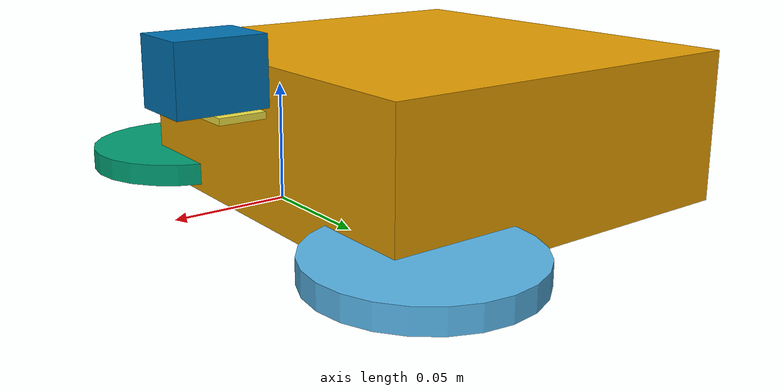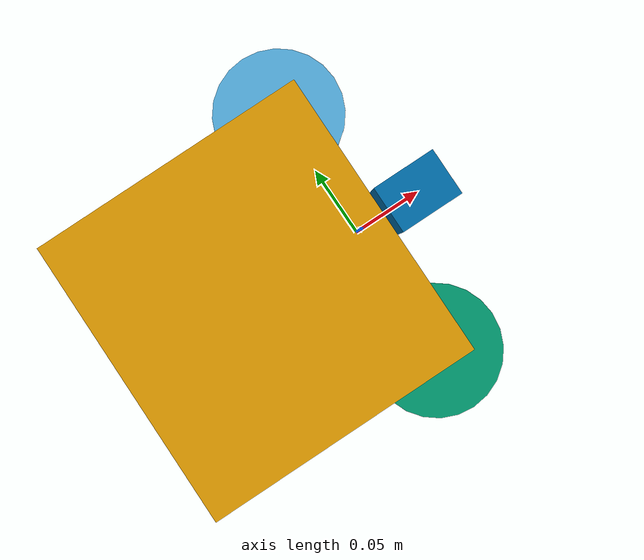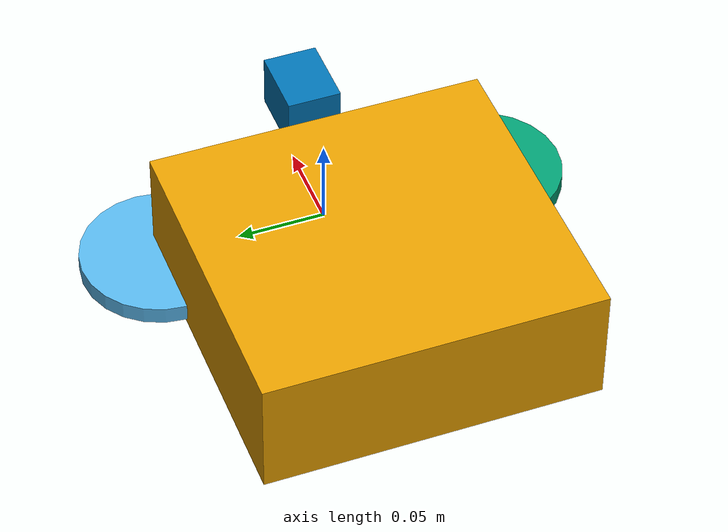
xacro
<?xml version="1.0"?>
<robot name="ccs_robot">
  <link name="base_link">
    <!-- Approximate shape by box. The origin is on the ground between the wheels. The box is 2.6cm above the ground and starts 7.72cm in front of the origin. -->
    <colision>
      <geometry><box size=".18 .19 .069" /></geometry>
      <origin xyz="-.0772 0 .026" rpy="0 0 0" />
    </colision>
    <visual>
      <geometry><box size=".18 .19 .069" /></geometry>
      <origin xyz="-.0772 0 .026" rpy="0 0 0" />
    </visual>
  </link>

  <link name="left_wheel">
    <collision>
      <geometry><cylinder length=".01" radius=".045" /></geometry>
      <origin xyz="0 0 0" rpy="0 0 0" />
    </collision>
    <visual>
      <geometry><cylinder length=".01" radius=".045" /></geometry>
      <origin xyz="0 0 0" rpy="0 0 0" />
    </visual>
  </link>
  <joint type="continuous" name="left_wheel_hinge">
    <parent link="base_link" />
    <child link="left_wheel" />
    <origin xyz="0 .095 0" rpy="0 0 0" />
    <axis xyz="0 1 0" rpy="0 0 0" />
  </joint>
  <transmission name="left_transmission">
    <type>transmission_interface/SimpleTransmission</type>
    <joint name="left_wheel_hinge">
      <hardwareInterface>VelocityJointInterface</hardwareInterface>
    </joint>
    <actuator name="left_motor">
      <hardwareInterface>VelocityJointInterface</hardwareInterface>
      <mechanicalReduction>50</mechanicalReduction> <!-- TODO: Untested  -->
    </actuator>
  </transmission>

  <link name="right_wheel">
    <collision>
      <geometry><cylinder length=".01" radius=".045" /></geometry>
      <origin xyz="0 0 0" rpy="0 0 0" />
    </collision>
    <visual>
      <geometry><cylinder length=".01" radius=".045" /></geometry>
      <origin xyz="0 0 0" rpy="0 0 0" />
    </visual>
  </link>
  <joint type="continuous" name="right_wheel_hinge">
    <parent link="base_link" />
    <child link="right_wheel" />
    <origin xyz="0 -.095 0" rpy="0 0 0" />
    <axis xyz="0 1 0" rpy="0 0 0" />
  </joint>
  <transmission name="right_transmission">
    <type>transmission_interface/SimpleTransmission</type>
    <joint name="right_wheel_hinge">
      <hardwareInterface>VelocityJointInterface</hardwareInterface>
    </joint>
    <actuator name="right_motor">
      <hardwareInterface>VelocityJointInterface</hardwareInterface>
      <mechanicalReduction>50</mechanicalReduction> <!-- TODO: Untested -->
    </actuator>
  </transmission>

  <joint type="fixed" name="camera_base_link_hinge">
    <parent link="base_link" />
    <child link="camera_platform" />
    <origin xyz="0 0 0.04" rpy="0 0 0" />
  </joint>

  <link name="camera_platform">
    <collision>
      <geometry><box size="0.068 0.02 0.003" /></geometry>
      <origin xyz="0.034 0 0" rpy="0 0 0" />
    </collision>
    <visual>
      <geometry><box size="0.068 0.02 0.003"/></geometry>
      <origin xyz="0 0 0" rpy="0 0 0"/>
    </visual>
  </link>
  <joint type="fixed" name="camera_mounting_hinge">
    <parent link="camera_platform" />
    <child link="camera_mounting" />
    <origin xyz="0.034 0 0" rpy="0 0 0" />
  </joint>

  <link name="camera_mounting">
    <collision>
      <geometry><box size="0.04 0.03 0.03"/></geometry>
      <origin xyz="0 0 0.019" rpy="0 0 0" />
    </collision>
    <visual>
      <geometry><box size="0.04 0.03 0.03"/></geometry>
      <origin xyz="0 0 0.019" rpy="0 0 0" />
    </visual>
  </link>

  <sensor name="camera" update_rate="20">
    <parent link="camera_mounting"/>
    <origin xyz="0 0 0" rpy="0 0 0"/>
    <camera>
            <image width="640" height="480" hfov="1.5708" format="RGB8" near="0.01" far="50.0"/> <!-- TODO: Untested-->
    </camera>
  </sensor>

  <link name="led/red">
  </link>
  <joint type="fixed" name="led/red_fastening">
    <parent link="base_link" />
    <child link="led/red" />
    <origin xyz="0 0 0" rpy="0 0 0" />
  </joint>

  <link name="led/blue">
  </link>
  <joint type="fixed" name="led/blue_fastening">
    <parent link="base_link" />
    <child link="led/blue" />
    <origin xyz="0 0 0" rpy="0 0 0" />
  </joint>

  <link name="distance_sensor/back_right">
  </link>
  <joint type="fixed" name="distance_sensor/back_right_fastening">
    <parent link="base_link" />
    <child link="distance_sensor/back_right" />
    <origin xyz="0 0 0" rpy="0 0 0" />
  </joint>

  <link name="distance_sensor/back_left">
  </link>
  <joint type="fixed" name="distance_sensor/back_left_fastening">
    <parent link="base_link" />
    <child link="distance_sensor/back_left" />
    <origin xyz="0 0 0" rpy="0 0 0" />
  </joint>

  <link name="distance_sensor/front_left">
  </link>
  <joint type="fixed" name="distance_sensor/front_left_fastening">
    <parent link="base_link" />
    <child link="distance_sensor/front_left" />
    <origin xyz="0 0 0" rpy="0 0 0" />
  </joint>

  <link name="distance_sensor/front_center">
  </link>
  <joint type="fixed" name="distance_sensor/front_center_fastening">
    <parent link="base_link" />
    <child link="distance_sensor/front_center" />
    <origin xyz="0 0 0" rpy="0 0 0" />
  </joint>

  <link name="distance_sensor/front_right">
  </link>
  <joint type="fixed" name="distance_sensor/front_right_fastening">
    <parent link="base_link" />
    <child link="distance_sensor/front_right" />
    <origin xyz="0 0 0" rpy="0 0 0" />
  </joint>

</robot>
